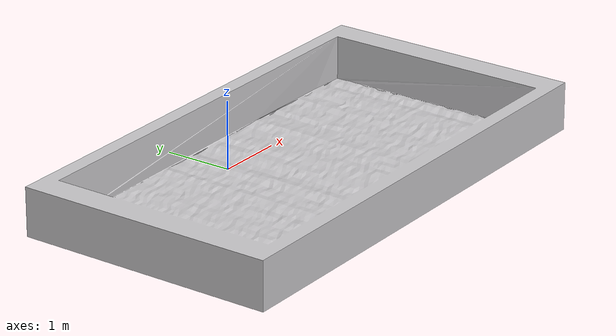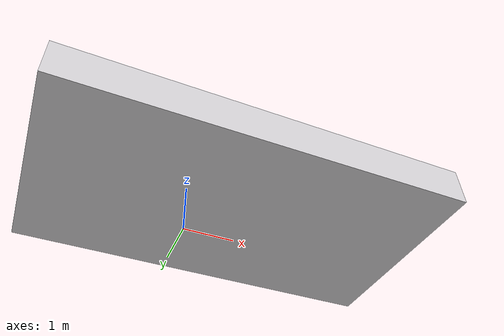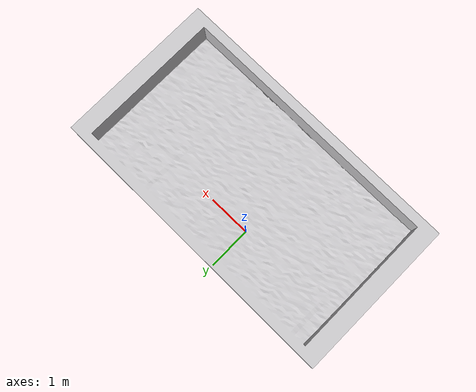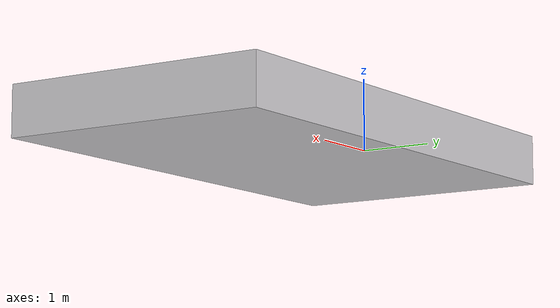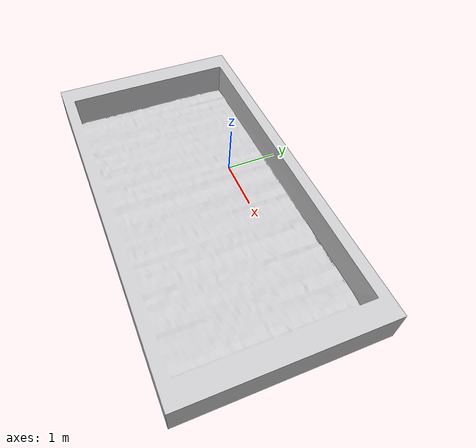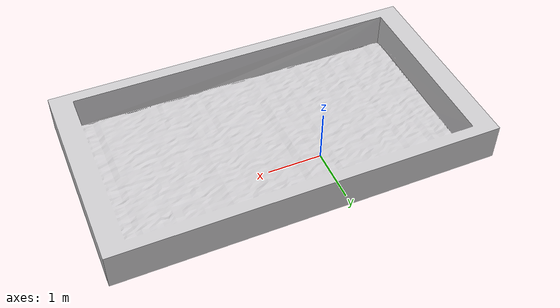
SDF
<?xml version='1.0'?>
<sdf version='1.3'>
  <model name="ales_lunapit">
    <static>true</static>
    <pose>0 0 -0.765500 0 0 0</pose>
    <link name="base_link">
      <pose>0 0 0 0 0 0</pose>
        <inertial>
          <mass>0.10</mass>
          <inertia>
            <ixx>3.737</ixx>
            <ixy>0.008</ixy>
            <ixz>-0.144</ixz>
            <iyy>8.311</iyy>
            <iyz>-0.004</iyz>
            <izz>8.893</izz>
          </inertia>
        </inertial>

        <collision name="base_geom">
          <pose>0 0 0 0 0 0</pose>
          <geometry>
            <mesh>
              <uri>model://ales_lunapit/meshes/LunaPitBoundry.dae</uri>
            </mesh>
          </geometry>
          <surface>
            <friction>
              <ode>
                <mu>0.25</mu>
                <mu2>0.15</mu2>
                <slip1>0.35</slip1>
                <slip2>0.35</slip2>
              </ode>
            </friction>
          </surface>
        </collision>
        <visual name="base_visual">
          <pose>0 0 0 0 0 0</pose>
          <geometry>
            <mesh>
              <uri>model://ales_lunapit/meshes/LunaPitBoundry.dae</uri>
            </mesh>
          </geometry>
        </visual>
    </link>
  </model>
</sdf>
